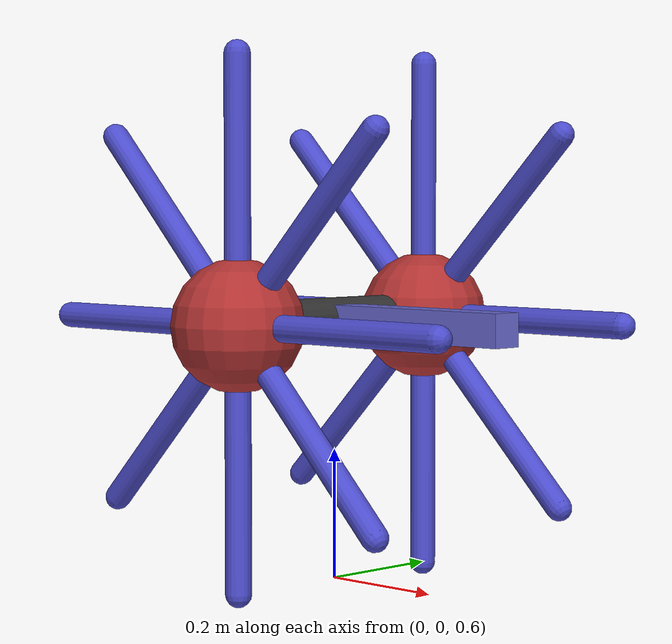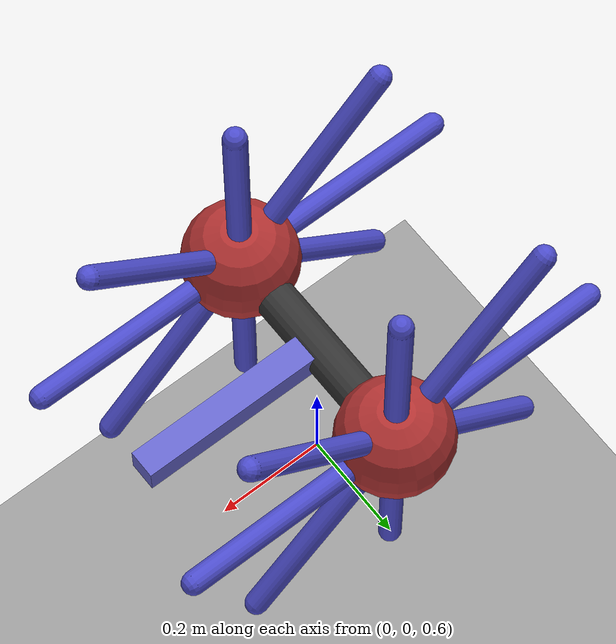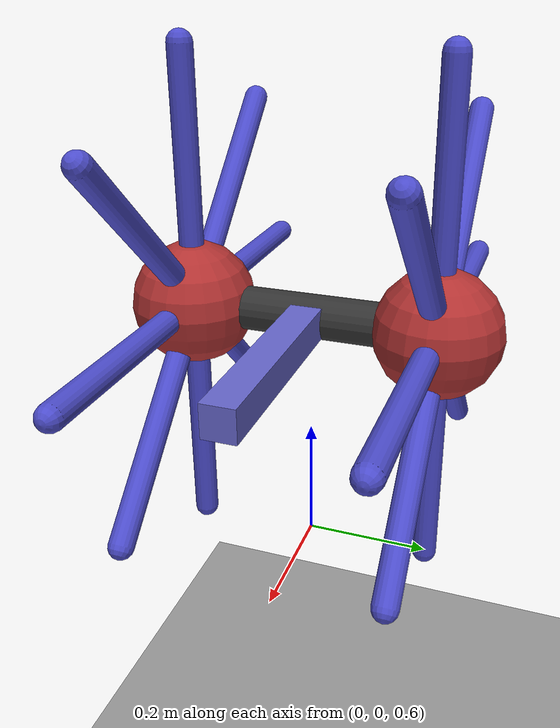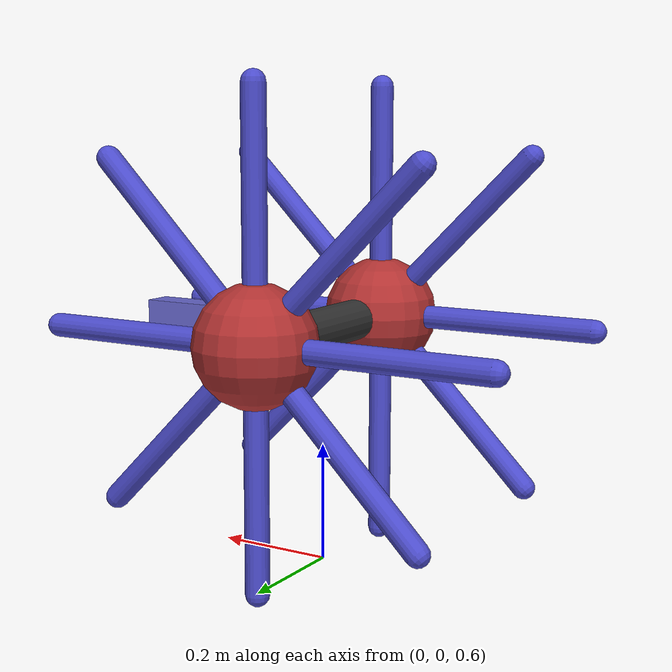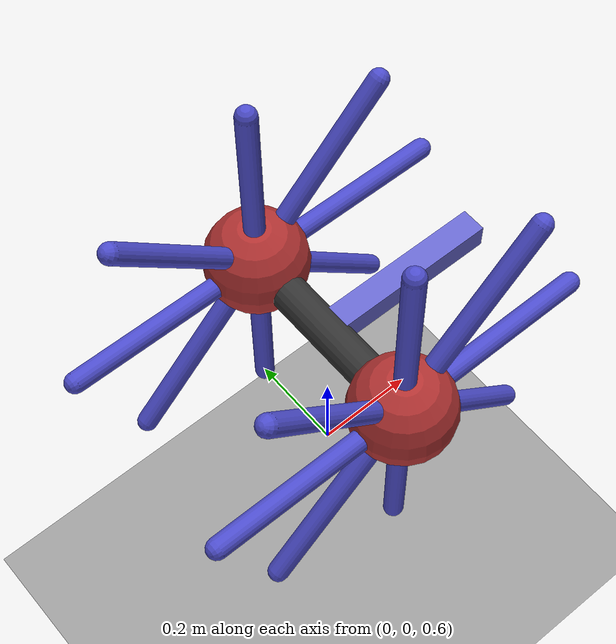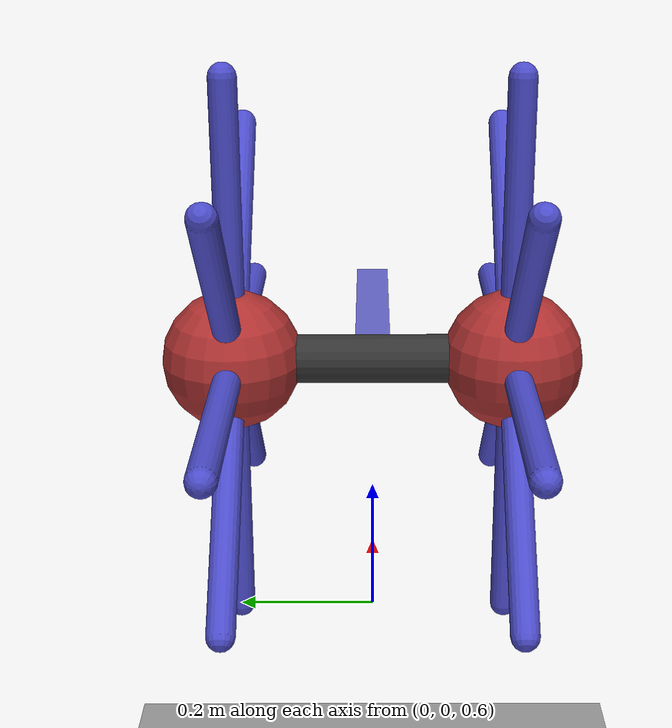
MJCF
<mujoco>
  <option timestep="0.005" gravity="0 0 -9.81"/>

  <asset>
    <!-- Define materials -->
    <material name="hub_material" rgba="0.7 0.2 0.2 1"/>
    <material name="main_body_material" rgba="0.2 0.2 0.2 1"/>
    <material name="spoke_material" rgba="0.3 0.3 0.8 1"/>
    <material name="joint_material" rgba="0.4 0.4 0.8 1"/>
    <material name="ground_material" rgba="0.6 0.6 0.6 1"/>
  </asset>

  <worldbody>
    <!-- Ground plane for the wheel to roll on -->
    <geom name="ground" type="plane" size="10 10 0.1" material="ground_material" condim="3"/>

    <!-- Light source to illuminate the model -->
    <light pos="0 0 5" dir="0 0 -1" diffuse="1 1 1"/>

    <!-- Central hub of the rimless wheel -->
    <body name="hub" pos="0 0 1">
    <freejoint/>
      <!-- Hinge joint to allow the hub to rotate around the y-axis -->
      <!-- Geometry for the central hub -->
      <geom name="main_body" type="capsule" pos="0 0 0" fromto="0 0.2 0 0 -0.2 0" size="0.035" material="main_body_material"/>

      <!-- Spokes of the rimless wheel -->
      <!-- Each spoke is positioned and rotated around the hub to simulate a wheel without a rim -->
      <body name="hub_left" pos="0 -0.2 0">
        <geom name="hub_left_geom" type="sphere" pos="0 0 0" size="0.1" material="hub_material"/>
      </body>

      <body name="spoke1_left" pos="0 -0.2 0">
        <geom name="spoke1_left_geom" type="capsule" pos="0 0 0" fromto="0 0 0 0.4 0 0" size="0.02" material="spoke_material"/>
      </body>
      <body name="spoke2_left" pos="0 -0.2 0" euler="90 0 45">
        <geom name="spoke2_left_geom" type="capsule" pos="0 0 0" fromto="0 0 0 0.4 0 0" size="0.02" material="spoke_material"/>
      </body>
      <body name="spoke3_left" pos="0
       -0.2 0" euler="90 0 90">
        <geom name="spoke3_left_geom" type="capsule" pos="0 0 0" fromto="0 0 0 0.4 0 0" size="0.02" material="spoke_material"/>
      </body>
      <body name="spoke4_left" pos="0
       -0.2 0" euler="90 0 135">
        <geom name="spoke4_left_geom" type="capsule" pos="0 0 0" fromto="0 0 0 0.4 0 0" size="0.02" material="spoke_material"/>
      </body>
      <body name="spoke5_left" pos="0
       -0.2 0" euler="90 0 180">
        <geom name="spoke5_left_geom" type="capsule" pos="0 0 0" fromto="0 0 0 0.4 0 0" size="0.02" material="spoke_material"/>
      </body>
      <body name="spoke6_left" pos="0
       -0.2 0" euler="90 0 225">
        <geom name="spoke6_left_geom" type="capsule" pos="0 0 0" fromto="0 0 0 0.4 0 0" size="0.02" material="spoke_material"/>
      </body>
      <body name="spoke7_left" pos="0
       -0.2 0" euler="90 0 270">
        <geom name="spoke7_left_geom" type="capsule" pos="0 0 0" fromto="0 0 0 0.4 0 0" size="0.02" material="spoke_material"/>
      </body>
      <body name="spoke8_left" pos="0
       -0.2 0" euler="90 0 315">
        <geom name="spoke8_left_geom" type="capsule" pos="0 0 0" fromto="0 0 0 0.4 0 0" size="0.02" material="spoke_material"/>
      </body>

      <body name="hub_right" pos="0 0.2 0">
        <geom name="hub_right_geom" type="sphere" pos="0 0 0" size="0.1" material="hub_material"/>
      </body>
      <body name="spoke1_right" pos="0 0.2 0">
        <geom name="spoke1_right_geom" type="capsule" pos="0 0 0" fromto="0 0 0 0.4 0 0" size="0.02" material="spoke_material"/>
      </body>
      <body name="spoke2_right" pos="0 0.2 0" euler="90 0 45">
        <geom name="spoke2_right_geom" type="capsule" pos="0 0 0" fromto="0 0 0 0.4 0 0" size="0.02" material="spoke_material"/>
      </body>
      <body name="spoke3_right" pos="0
       0.2 0" euler="90 0 90">
        <geom name="spoke3_right_geom" type="capsule" pos="0 0 0" fromto="0 0 0 0.4 0 0" size="0.02" material="spoke_material"/>
      </body>
      <body name="spoke4_right" pos="0
       0.2 0" euler="90 0 135">
        <geom name="spoke4_right_geom" type="capsule" pos="0 0 0" fromto="0 0 0 0.4 0 0" size="0.02" material="spoke_material"/>
      </body>
      <body name="spoke5_right" pos="0
       0.2 0" euler="90 0 180">
        <geom name="spoke5_right_geom" type="capsule" pos="0 0 0" fromto="0 0 0 0.4 0 0" size="0.02" material="spoke_material"/>
      </body>
      <body name="spoke6_right" pos="0
       0.2 0" euler="90 0 225">
        <geom name="spoke6_right_geom" type="capsule" pos="0 0 0" fromto="0 0 0 0.4 0 0" size="0.02" material="spoke_material"/>
      </body>
      <body name="spoke7_right" pos="0
       0.2 0" euler="90 0 270">
        <geom name="spoke7_right_geom" type="capsule" pos="0 0 0" fromto="0 0 0 0.4 0 0" size="0.02" material="spoke_material"/>
      </body>
      <body name="spoke8_right" pos="0
       0.2 0" euler="90 0 315">
        <geom name="spoke8_right_geom" type="capsule" pos="0 0 0" fromto="0 0 0 0.4 0 0" size="0.02" material="spoke_material"/>
      </body>

      <!-- Control -->
      <body name="swing_leg" pos="0 0 0">
        <joint name="swing_leg_joint" type="hinge" axis="0 -1 0" />
        <geom name="swing_leg_geom" type="box" pos="0 0 0" fromto="0 0 0 0.35 0 0" size="0.025" material="joint_material" mass="10"/>
      </body>

    </body>
  </worldbody>

  <!-- Actuators for joint control -->
  <actuator>
    <position joint="swing_leg_joint" name="swing_leg_joint_motor"  ctrlrange="-1000 1000"/>

    <!-- kp="50" kv = "0.5" -->

  </actuator>

</mujoco>
